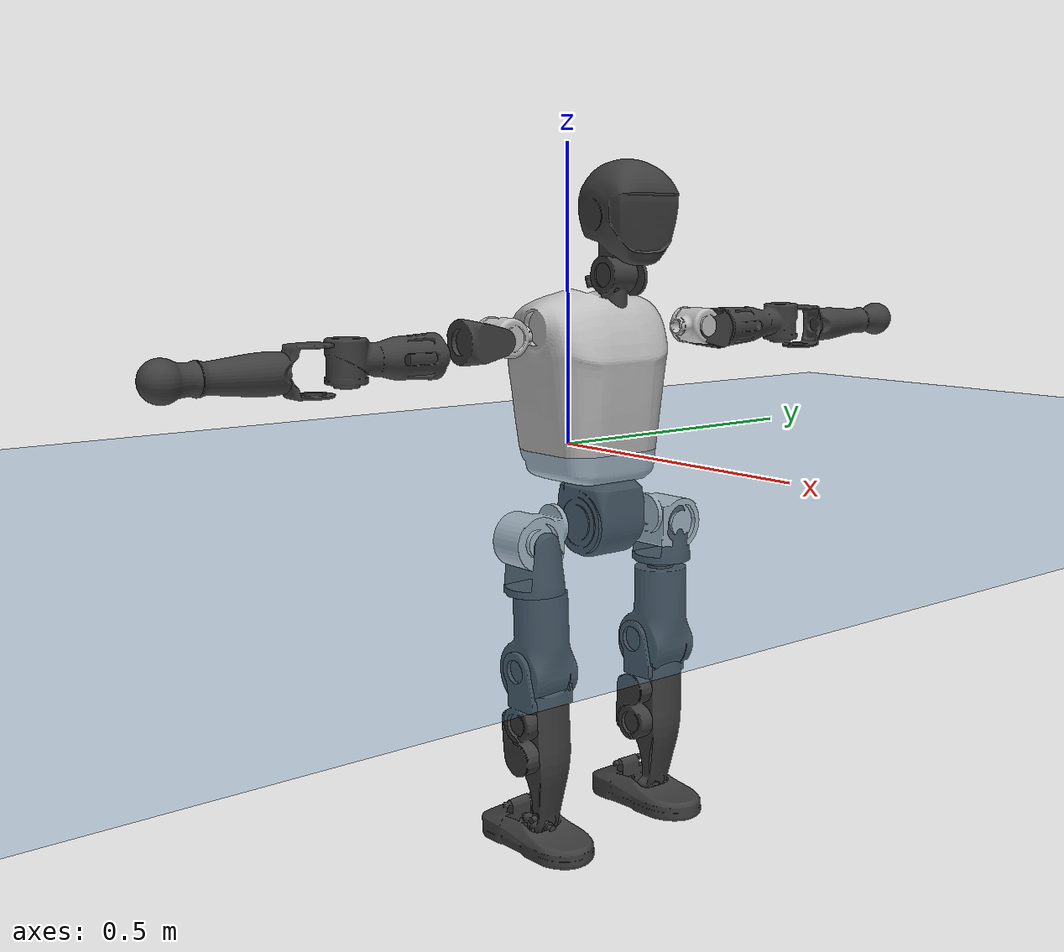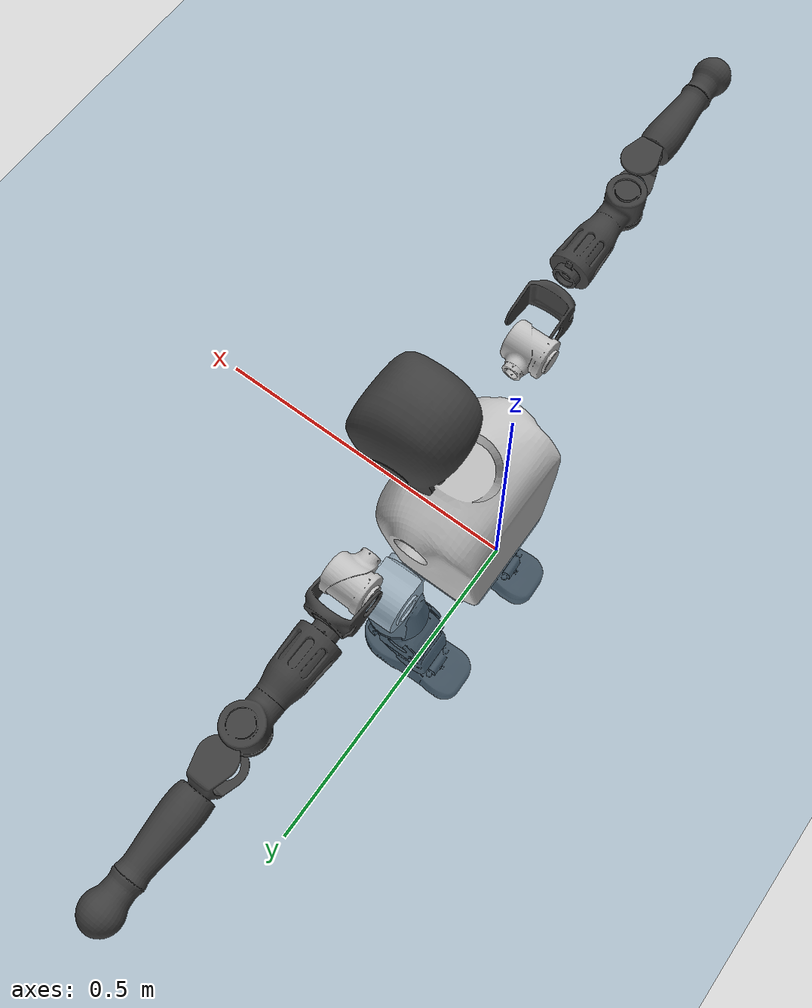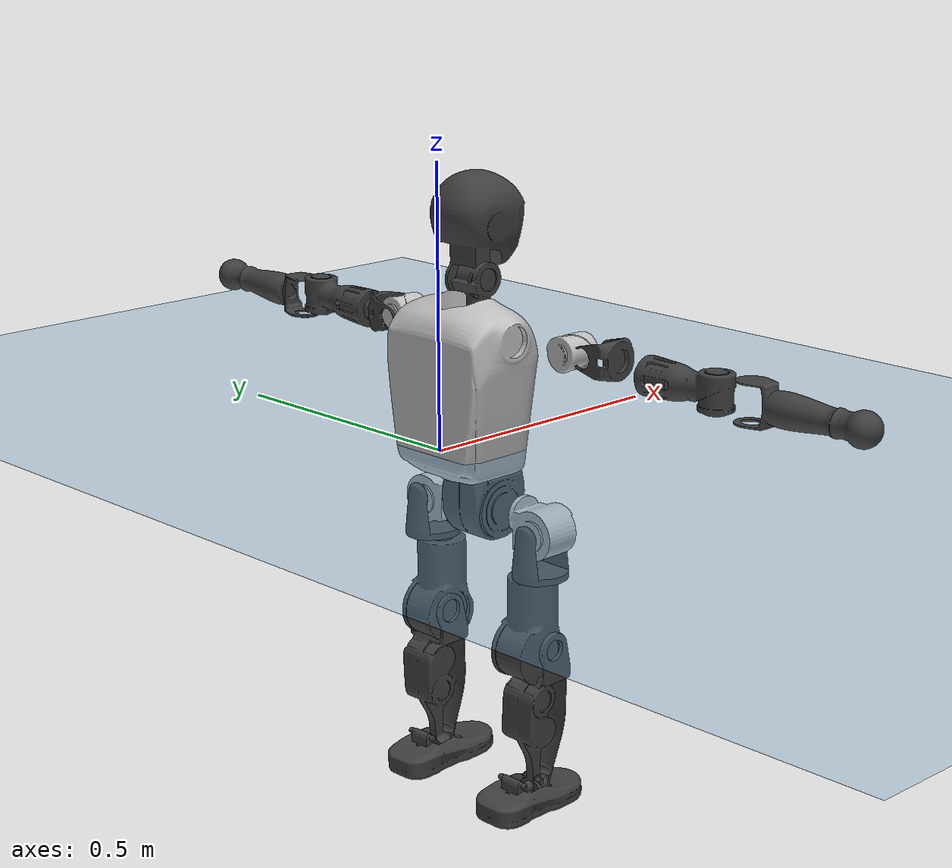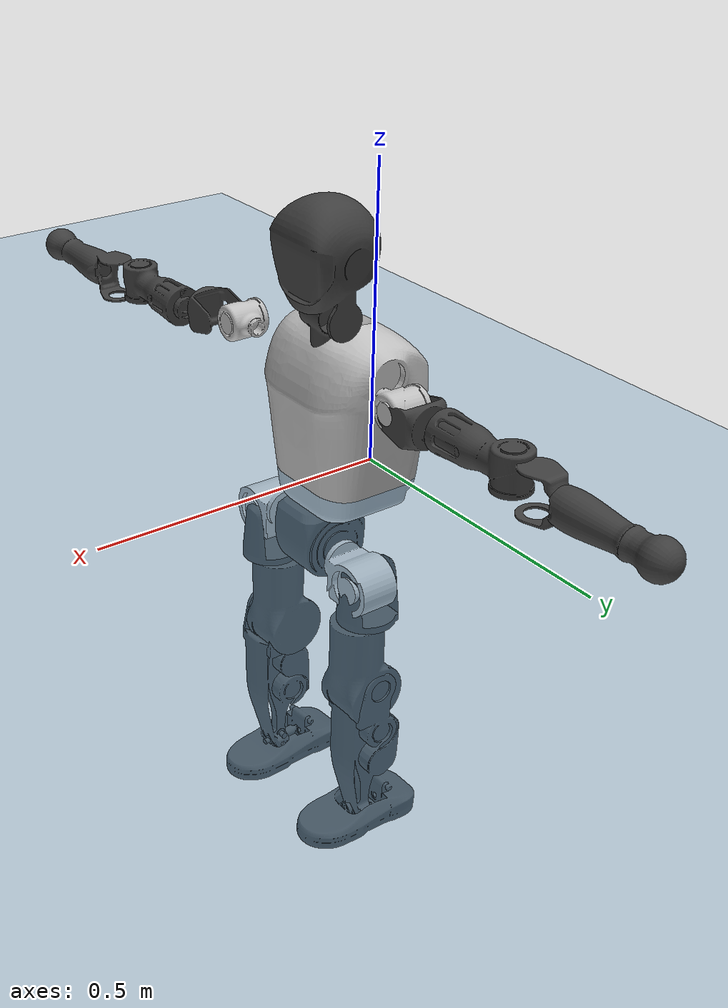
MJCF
<mujoco model="T1">
  <compiler angle="radian" assetdir="assets" balanceinertia="true" inertiafromgeom="false"/>

  <option timestep="0.005" density="1.2" viscosity="2e-05"/>

  <size nkey="1"/>

  <visual>
    <quality shadowsize="8192"/>
    <map shadowclip="0.5"/>
  </visual>

  <default>
    <default class="/">
      <joint armature="0.01" damping="0.01" frictionloss="0.1"/>
      <geom contype="0" conaffinity="0" group="1" solref="-1000 -80"/>
      <site size="0.01 0.005 0.005" group="5"/>
      <general forcelimited="true" biastype="affine" gainprm="25" biasprm="0 -25 -0.6"/>
      <default class="t1">
        <geom rgba="0.25 0.25 0.25 1"/>
        <default class="visual">
          <geom type="mesh" group="2"/>
        </default>
        <default class="collision">
          <geom group="3"/>
        </default>
        <default class="foot">
          <geom size="0.1115 0.05 0.015" type="box" condim="6" group="4" priority="1" solimp="0.015 1 0.015"/>
        </default>
        <default class="reward_collision_sphere">
          <geom group="5" rgba="1 0 0 1"/>
        </default>
      </default>
    </default>
  </default>

  <asset>
    <texture type="skybox" colorspace="auto" name="//unnamed_texture_0" builtin="gradient" rgb1="0.95 0.95 0.95" rgb2="0.95 0.95 0.95" width="100" height="600"/>
    <texture type="2d" colorspace="auto" name="texplane" builtin="checker" rgb1="0.345 0.575 0.748" rgb2="0.345 0.575 0.748" markrgb="1 1 1" width="512" height="512"/>
    <material name="MatPlane" class="/" texture="texplane" texuniform="true" texrepeat="2 2" specular="0.9"/>
    <mesh name="Trunk" class="/" file="Trunk.stl"/>
    <mesh name="H1" class="/" file="H1.stl"/>
    <mesh name="H2" class="/" file="H2.stl"/>
    <mesh name="AL1" class="/" file="AL1.stl"/>
    <mesh name="AL2" class="/" file="AL2.stl"/>
    <mesh name="AL3" class="/" file="AL3.stl"/>
    <mesh name="left_hand_link" class="/" file="left_hand_link.stl"/>
    <mesh name="AR1" class="/" file="AR1.stl"/>
    <mesh name="AR2" class="/" file="AR2.stl"/>
    <mesh name="AR3" class="/" file="AR3.stl"/>
    <mesh name="right_hand_link" class="/" file="right_hand_link.stl"/>
    <mesh name="Waist" class="/" file="Waist.stl"/>
    <mesh name="Hip_Pitch_Left" class="/" file="Hip_Pitch_Left.stl"/>
    <mesh name="Hip_Roll_Left" class="/" file="Hip_Roll_Left.stl"/>
    <mesh name="Hip_Yaw_Left" class="/" file="Hip_Yaw_Left.stl"/>
    <mesh name="Shank_Left" class="/" file="Shank_Left.stl"/>
    <mesh name="Ankle_Cross_Left" class="/" file="Ankle_Cross_Left.stl"/>
    <mesh name="left_foot_link" class="/" file="left_foot_link.stl"/>
    <mesh name="Hip_Pitch_Right" class="/" file="Hip_Pitch_Right.stl"/>
    <mesh name="Hip_Roll_Right" class="/" file="Hip_Roll_Right.stl"/>
    <mesh name="Hip_Yaw_Right" class="/" file="Hip_Yaw_Right.stl"/>
    <mesh name="Shank_Right" class="/" file="Shank_Right.stl"/>
    <mesh name="Ankle_Cross_Right" class="/" file="Ankle_Cross_Right.stl"/>
    <mesh name="right_foot_link" class="/" file="right_foot_link.stl"/>
  </asset>

  <worldbody>
    <geom name="floor" class="/" size="100 100 0.125" type="plane" group="0" material="MatPlane"/>
    <light name="toplight_shadow" class="/" pos="0 0 5" dir="0.0990148 0.0990148 -0.990148" type="directional" ambient="0.04 0.04 0.04" diffuse="0.55 0.55 0.55" specular="0.12 0.12 0.12"/>
    <light name="toplight_fill" class="/" pos="0 0 5" dir="0.0990148 0.0990148 -0.990148" type="directional" castshadow="false" ambient="0.04 0.04 0.04" diffuse="0.3 0.3 0.3" specular="0.08 0.08 0.08"/>
    <body name="trunk" childclass="t1" pos="0.00402892 -0.000719358 -0.0148232" quat="0.999997 0.00119229 0.00112937 0.00207139">
      <inertial pos="0.0767974 0.0027601 0.111934" quat="0.998647 0.050705 0.0115004 0.000291404" mass="27.2718" diaginertia="0.611995 0.42566 0.056487"/>
      <joint name="//unnamed_joint_0" type="free" armature="0" damping="0" frictionloss="0"/>
      <geom name="//unnamed_geom_1" class="visual" rgba="0.76 0.76 0.76 1" mesh="Trunk"/>
      <geom name="//unnamed_geom_2" class="collision" size="0.0971308 0.129508 0.194262" pos="0.0868803 0 0.118143" type="box"/>
      <geom name="//unnamed_geom_3" class="reward_collision_sphere" size="0.148934" pos="0.0868803 0 0.0984521"/>
      <geom name="//unnamed_geom_4" class="reward_collision_sphere" size="0.0194262" pos="0.0868803 0.12348 0"/>
      <geom name="//unnamed_geom_5" class="reward_collision_sphere" size="0.0194262" pos="0.0868803 -0.12348 0"/>
      <geom name="//unnamed_geom_6" class="reward_collision_sphere" size="0.0194262" pos="0.0868803 0.155439 0.177214"/>
      <geom name="//unnamed_geom_7" class="reward_collision_sphere" size="0.0194262" pos="0.0868803 -0.155439 0.177214"/>
      <site name="imu" pos="-0.0918841 0.0813087 -0.0496911" size="0.0129508"/>
      <camera name="track" pos="0 -2.90541 0" quat="0.707107 0.707107 0 0" mode="trackcom"/>
      <camera name="ego_camera" pos="0.176657 0 0.413499" quat="-0.5 -0.5 0.5 0.5"/>
      <body name="H1" pos="0.0998924 0.0119178 0.239558" quat="0.999983 -0.00312614 -0.00488449 -0.000741443">
        <inertial pos="-0.00168129 0.00459289 0.0634356" quat="0.737637 -0.00416699 -0.00593597 0.675159" mass="0.893376" diaginertia="0.00116804 0.00137646 0.000111197"/>
        <joint name="AAHead_yaw" pos="0 0 0" axis="-0.00489293 -0.00814189 0.999955" range="-1.76797 1.32182" armature="0.00758812" damping="0.000145821" frictionloss="0.181138"/>
        <geom name="//unnamed_geom_8" class="visual" mesh="H1"/>
        <body name="H2" pos="-0.00347959 0.0168997 0.056865" quat="0.999999 0.00110971 7.35036e-05 -0.00106059">
          <inertial pos="-0.00747416 -0.0156041 0.0840658" quat="0.992096 0.076855 -0.08728 -0.047133" mass="1.00935" diaginertia="0.0109121 0.0131674 0.00163505"/>
          <joint name="Head_pitch" pos="0 0 0" axis="0.0346474 -0.999252 -0.0171479" range="-1.22479 0.0888741" armature="0.0238145" damping="0.0707636" frictionloss="0.124994"/>
          <geom name="//unnamed_geom_9" class="visual" mesh="H2"/>
          <geom name="//unnamed_geom_10" class="collision" size="0.103606" pos="0.01448 0 0.108297"/>
          <geom name="//unnamed_geom_11" class="reward_collision_sphere" size="0.116557" pos="0.0289601 0 0.0984521"/>
        </body>
      </body>
      <body name="AL1" pos="0.097445 0.152166 0.211551" quat="0.999987 -0.0019506 -0.000375758 -0.00473777">
        <inertial pos="-0.0114349 0.0544626 -0.0170414" quat="0.498672 0.487831 -0.547965 0.461607" mass="1.21449" diaginertia="0.0090822 0.00804375 0.000228617"/>
        <joint name="Left_Shoulder_Pitch" pos="0 0 0" axis="-0.00456315 0.999122 0.0416561" stiffness="0.0788916" range="-2.97832 1.481" armature="0.00845755" damping="0.0166656" frictionloss="0.138676"/>
        <geom name="//unnamed_geom_12" class="visual" rgba="0.76 0.76 0.76 1" mesh="AL1"/>
        <body name="AL2" pos="-0.0045429 0.0516771 -0.00790726" quat="0.999957 0.00506193 0.00304092 -0.00709395">
          <inertial pos="-0.00471936 0.0582058 0.014443" quat="0.489532 0.513474 -0.507644 0.488876" mass="0.208226" diaginertia="0.00212038 0.00143168 0.00013899"/>
          <joint name="Left_Shoulder_Roll" pos="0 0 0" axis="-0.995636 -0.0280415 -0.0890067" stiffness="0.057126" range="-1.32214 1.6893" armature="0.00581625" damping="0.0968347" frictionloss="0.189594"/>
          <geom name="//unnamed_geom_13" class="visual" mesh="AL2"/>
          <body name="AL3" pos="-0.0094588 0.0713825 0.000662753" quat="0.999955 0.00864695 0.00302602 -0.00246363">
            <inertial pos="-0.00501985 0.119649 -0.00242781" quat="0.7561 0.654085 -0.0219299 0.00228736" mass="1.72453" diaginertia="0.0680197 0.0619451 0.000513761"/>
            <joint name="Left_Elbow_Pitch" pos="0 0 0" axis="-0.0036138 -0.9999 0.0136635" range="-2.06054 2.20339" armature="0.0108572" damping="0" frictionloss="0.110781"/>
            <geom name="//unnamed_geom_14" class="visual" mesh="AL3"/>
            <geom name="//unnamed_geom_15" class="collision" size="0.0388523 0.0971308" pos="0 0.0726353 0" quat="0.707105 0.707108 0 0" type="cylinder"/>
            <geom name="//unnamed_geom_16" class="reward_collision_sphere" size="0.0466228"/>
            <body name="left_hand_link" pos="-0.00131196 0.195697 -0.0127632" quat="0.999963 0.000518359 0.00742843 0.00431272">
              <inertial pos="0.00605729 0.169588 0.0172202" quat="0.761995 0.647331 0.00539369 -0.0172442" mass="0.862412" diaginertia="0.0552256 0.0623272 0.00027954"/>
              <joint name="Left_Elbow_Yaw" pos="0 0 0" axis="0.0595358 0.0506558 0.99694" range="-2.45371 -0.295071" armature="0.0117934" damping="0.0727806" frictionloss="0.0105762"/>
              <geom name="//unnamed_geom_17" class="visual" mesh="left_hand_link"/>
              <geom name="//unnamed_geom_18" class="collision" size="0.0388523 0.113319" pos="0 0.188852 0" quat="0.707105 0.707108 0 0" type="cylinder"/>
              <geom name="//unnamed_geom_19" class="reward_collision_sphere" size="0.0647539"/>
              <geom name="//unnamed_geom_20" class="reward_collision_sphere" size="0.0453277" pos="0 0.159798 0"/>
              <geom name="//unnamed_geom_21" class="reward_collision_sphere" size="0.0453277" pos="0 0.312332 0"/>
            </body>
          </body>
        </body>
      </body>
      <body name="AR1" pos="0.0990086 -0.168078 0.211543" quat="0.999994 -0.00101935 0.0024261 -0.00210798">
        <inertial pos="-0.0049523 -0.058063 -0.00533465" quat="0.508335 0.479635 -0.518316 0.492844" mass="1.05816" diaginertia="0.00881871 0.0097379 0.000300592"/>
        <joint name="Right_Shoulder_Pitch" pos="0 0 0" axis="0.0499399 -0.998398 -0.0265973" range="-1.57006 3.42633" armature="0.0152892" damping="0" frictionloss="0.138972"/>
        <geom name="//unnamed_geom_22" class="visual" rgba="0.76 0.76 0.76 1" mesh="AR1"/>
        <body name="AR2" pos="0.0170311 -0.0827429 -0.00260687" quat="0.999985 -0.00400113 0.00386532 -6.86366e-05">
          <inertial pos="0.0175523 -0.064942 0.0138406" quat="0.503726 0.498581 -0.468637 0.52731" mass="0.282811" diaginertia="0.00271284 0.00242454 0.000158"/>
          <joint name="Right_Shoulder_Roll" pos="0 0 0" axis="-0.999598 0.0216922 0.0182603" range="-1.9654 1.91514" armature="0.0109358" damping="0" frictionloss="0.238047"/>
          <geom name="//unnamed_geom_23" class="visual" mesh="AR2"/>
          <body name="AR3" pos="0.0114066 -0.106125 -0.016287" quat="0.999997 0.000809715 -0.00106663 -0.00227121">
            <inertial pos="-0.000795759 -0.115979 0.00030226" quat="0.721322 0.686481 -0.0798214 0.0454619" mass="2.4765" diaginertia="0.0916739 0.0680725 0.000615735"/>
            <joint name="Right_Elbow_Pitch" pos="0 0 0" axis="6.83765e-05 0.999996 0.00296241" range="-2.238 2.31118" armature="0.0169822" damping="0" frictionloss="0.0162998"/>
            <geom name="//unnamed_geom_24" class="visual" mesh="AR3"/>
            <geom name="//unnamed_geom_25" class="collision" size="0.0388523 0.0971308" pos="0 -0.0726353 0" quat="0.707105 0.707108 0 0" type="cylinder"/>
            <geom name="//unnamed_geom_26" class="reward_collision_sphere" size="0.0466228"/>
            <body name="right_hand_link" pos="0.0161971 -0.207324 -0.00855849" quat="0.999984 0.0030293 0.00384313 0.0029141">
              <inertial pos="-0.00651154 -0.158405 -0.0164001" quat="0.665381 0.743892 0.00974328 -0.0616241" mass="0.801385" diaginertia="0.0738632 0.0620445 0.000246928"/>
              <joint name="Right_Elbow_Yaw" pos="0 0 0" axis="0.0156397 0.020592 0.999666" stiffness="0.0124165" range="0.295601 2.29803" armature="0.000295006" damping="0.00952025" frictionloss="0.126339"/>
              <geom name="//unnamed_geom_27" class="visual" mesh="right_hand_link"/>
              <geom name="//unnamed_geom_28" class="collision" size="0.0388523 0.113319" pos="0 -0.188852 0" quat="0.707105 0.707108 0 0" type="cylinder"/>
              <geom name="//unnamed_geom_29" class="reward_collision_sphere" size="0.0647539"/>
              <geom name="//unnamed_geom_30" class="reward_collision_sphere" size="0.0453277" pos="0 -0.159798 0"/>
              <geom name="//unnamed_geom_31" class="reward_collision_sphere" size="0.0453277" pos="0 -0.312332 0"/>
            </body>
          </body>
        </body>
      </body>
      <body name="Waist" pos="0.0907099 -0.00904209 -0.0990146" quat="0.999998 5.75404e-05 0.000940427 0.00180005">
        <inertial pos="-0.0139731 0.000202898 0.00727496" quat="0.985356 -0.000610233 -0.163967 -0.046772" mass="5.56697" diaginertia="0.0406254 0.0494876 0.00479373"/>
        <joint name="Waist" pos="0 0 0" axis="-0.0072309 0.0421001 0.999087" stiffness="0.0171138" range="-1.94138 1.36578" armature="0.0224247" damping="0" frictionloss="0.163038"/>
        <geom name="//unnamed_geom_32" class="visual" mesh="Waist"/>
        <body name="Hip_Pitch_Left" pos="0.0169923 0.137828 -3.6627e-05" quat="0.999961 -0.00343589 -0.00420746 0.00692372">
          <inertial pos="0.0130987 -0.028794 -0.0165277" quat="0.974211 0.225527 0.00579271 -0.0040778" mass="2.79485" diaginertia="0.0128418 0.00835288 0.00130742"/>
          <joint name="Left_Hip_Pitch" pos="0 0 0" axis="-0.0209845 0.999414 -0.0270426" range="-1.81375 1.31152" armature="0.0126241" damping="0" frictionloss="0.133137"/>
          <geom name="//unnamed_geom_33" class="visual" rgba="0.76 0.76 0.76 1" mesh="Hip_Pitch_Left"/>
          <body name="Hip_Roll_Left" pos="-0.0116385 -0.00282472 -0.0110426" quat="0.999967 0.0026527 -0.00273882 -0.00714114">
            <inertial pos="0.00221973 0.00295476 -0.0447349" quat="0.698987 -0.015732 -0.0025036 0.714957" mass="0.791131" diaginertia="0.0112034 0.0113402 0.000547413"/>
            <joint name="Left_Hip_Roll" pos="0 0 0" axis="-0.999967 -0.000825577 -0.00802121" stiffness="0.061674" range="-1.72542 0.370125" armature="0.0122294" damping="0" frictionloss="0.0332817"/>
            <geom name="//unnamed_geom_34" class="visual" mesh="Hip_Roll_Left"/>
            <geom name="//unnamed_geom_35" class="reward_collision_sphere" size="0.0712292"/>
            <body name="Hip_Yaw_Left" pos="0.00753312 -0.0114074 -0.0862959" quat="0.99998 -6.96918e-05 0.00336119 0.00538139">
              <inertial pos="-0.0104838 0.00182079 -0.0871322" quat="0.689656 -0.0761773 -0.111942 0.711366" mass="5.39747" diaginertia="0.153086 0.203485 0.0020717"/>
              <joint name="Left_Hip_Yaw" pos="0 0 0" axis="-0.0375818 0.0720099 -0.996696" stiffness="0.0024952" range="-1.07845 0.893233" armature="0.0119375" damping="0.048346" frictionloss="0.126602"/>
              <geom name="//unnamed_geom_36" class="visual" mesh="Hip_Yaw_Left"/>
              <geom name="//unnamed_geom_37" class="collision" size="0.0647539 0.103606" type="cylinder"/>
              <body name="Shank_Left" pos="-0.0222614 -0.0035486 -0.12564" quat="0.999983 -0.000153915 -0.00508031 -0.00292233">
                <inertial pos="-0.00509712 -0.00869867 -0.121289" quat="0.991732 -0.0182343 -0.0896116 0.0900242" mass="3.55871" diaginertia="0.273046 0.202205 0.00178473"/>
                <joint name="Left_Knee_Pitch" pos="0 0 0" axis="-0.0116893 0.999921 0.00469452" stiffness="0.0148766" range="-0.193131 2.34525" armature="0.00707359" damping="0.0329927" frictionloss="0.0271449"/>
                <geom name="//unnamed_geom_38" class="visual" mesh="Shank_Left"/>
                <geom name="//unnamed_geom_39" class="collision" size="0.0647539 0.0971308" pos="0 0 -0.118143" type="cylinder"/>
                <geom name="//unnamed_geom_40" class="reward_collision_sphere" size="0.08418"/>
                <body name="Ankle_Cross_Left" pos="0.0105341 -0.0055828 -0.277017" quat="0.99998 -0.00154538 -0.0053425 0.00289294">
                  <inertial pos="0.000506005 -0.0113555 0.0107572" quat="0.45209 0.572402 0.552912 0.402814" mass="0.11597" diaginertia="0.000116988 0.000153546 9.58107e-06"/>
                  <joint name="Left_Ankle_Pitch" pos="0 0 0" axis="-0.00248466 0.998288 -0.0584363" stiffness="0.0274899" range="-0.493672 0.105258" armature="0.0202368" damping="0" frictionloss="0.0246738"/>
                  <geom name="//unnamed_geom_41" class="visual" mesh="Ankle_Cross_Left"/>
                  <body name="left_foot_link" pos="-0.0163078 -0.00396454 0.00506407" quat="0.999989 -0.00362785 -0.00258341 -0.0012245">
                    <inertial pos="0.00849783 0.0172133 -0.0162407" quat="-0.010066 0.622162 -0.0139496 0.7827" mass="1.7183" diaginertia="0.0145142 0.0156829 0.00183127"/>
                    <joint name="Left_Ankle_Roll" pos="0 0 0" axis="-0.999022 -0.0241928 0.0370045" range="-0.185159 0.639887" armature="0.0126732" damping="0.0585013" frictionloss="0.0940529"/>
                    <geom name="//unnamed_geom_42" class="visual" mesh="left_foot_link"/>
                    <geom name="left_foot" class="foot" size="0.0988136 0.0705222 0.0115513" pos="0.01448 0 -0.0147678"/>
                    <geom name="//unnamed_geom_44" class="reward_collision_sphere" size="0.067344" pos="0.01448 0 -0.0147678"/>
                    <geom name="//unnamed_geom_45" class="reward_collision_sphere" size="0.0388523" pos="0.13756 -0.0334122 -0.0147678"/>
                    <geom name="//unnamed_geom_46" class="reward_collision_sphere" size="0.0388523" pos="-0.10136 -0.0334122 -0.0147678"/>
                    <site name="left_foot" class="foot" pos="0.01448 0 -0.0147678" size="0.0129508"/>
                  </body>
                </body>
              </body>
            </body>
          </body>
        </body>
        <body name="Hip_Pitch_Right" pos="-0.000912872 -0.152699 0.00324467" quat="0.999982 -0.00226642 -0.00516851 -0.00206194">
          <inertial pos="-0.000487057 0.00237316 -0.0349345" quat="0.963609 -0.251967 0.0890746 0.0060597" mass="1.97418" diaginertia="0.0104104 0.00862302 0.000846573"/>
          <joint name="Right_Hip_Pitch" pos="0 0 0" axis="0.0376525 -0.99719 0.064768" stiffness="0.0557365" range="-1.50919 1.81436" armature="0.00371294" damping="0.0431638" frictionloss="0.0524146"/>
          <geom name="//unnamed_geom_47" class="visual" rgba="0.76 0.76 0.76 1" mesh="Hip_Pitch_Right"/>
          <body name="Hip_Roll_Right" pos="0.00168717 0.0111783 -0.0283074" quat="0.999956 0.00579413 -0.00642701 0.00360992">
            <inertial pos="-0.0167416 -0.00909523 -0.0394655" quat="0.685576 0.0322962 0.0515193 0.725457" mass="0.975401" diaginertia="0.0152797 0.0104229 0.000552701"/>
            <joint name="Right_Hip_Roll" pos="0 0 0" axis="-0.999921 0.012333 0.00247055" range="-0.203986 1.27224" armature="0.0101956" damping="0.00265885" frictionloss="0.124163"/>
            <geom name="//unnamed_geom_48" class="visual" mesh="Hip_Roll_Right"/>
            <geom name="//unnamed_geom_49" class="reward_collision_sphere" size="0.0712292"/>
            <body name="Hip_Yaw_Right" pos="-0.00633675 0.0144729 -0.0795898" quat="0.999965 0.00502865 -0.000435783 0.00664216">
              <inertial pos="-0.0228648 0.00636846 -0.0968637" quat="0.699632 0.00169989 -0.0873192 0.709145" mass="3.2982" diaginertia="0.103094 0.0994702 0.00163971"/>
              <joint name="Right_Hip_Yaw" pos="0 0 0" axis="-0.0195382 -0.0418728 -0.998932" stiffness="0.0046069" range="-0.964845 1.37123" armature="0.0122637" damping="0.0160196" frictionloss="0.238179"/>
              <geom name="//unnamed_geom_50" class="visual" mesh="Hip_Yaw_Right"/>
              <geom name="//unnamed_geom_51" class="collision" size="0.0647539 0.103606" type="cylinder"/>
              <body name="Shank_Right" pos="-0.00287856 -0.0134423 -0.121599" quat="0.999966 0.00672785 0.00457575 -0.00154637">
                <inertial pos="-0.0246897 -0.0120865 -0.114587" quat="0.999722 0.0029518 -0.0160621 -0.0169939" mass="3.22368" diaginertia="0.225079 0.292701 0.00231573"/>
                <joint name="Right_Knee_Pitch" pos="0 0 0" axis="-0.0202284 -0.999394 0.0283143" range="-2.17669 -0.00674037" armature="0.00968766" damping="0" frictionloss="0.0621774"/>
                <geom name="//unnamed_geom_52" class="visual" mesh="Shank_Right"/>
                <geom name="//unnamed_geom_53" class="collision" size="0.0647539 0.0971308" pos="0 0 -0.118143" type="cylinder"/>
                <geom name="//unnamed_geom_54" class="reward_collision_sphere" size="0.08418"/>
                <body name="Ankle_Cross_Right" pos="-0.00207933 -4.60021e-05 -0.261423" quat="0.999967 -6.2114e-05 0.00684105 0.00439749">
                  <inertial pos="-0.00632322 0.000961249 -0.0087309" quat="0.483026 0.556741 0.523165 0.427813" mass="0.223875" diaginertia="0.000217055 0.00019268 1.31734e-05"/>
                  <joint name="Right_Ankle_Pitch" pos="0 0 0" axis="-0.0491137 -0.995555 0.0803651" range="-0.375752 1.14583" armature="0.00333121" damping="0.0749541" frictionloss="0.249635"/>
                  <geom name="//unnamed_geom_55" class="visual" mesh="Ankle_Cross_Right"/>
                  <body name="right_foot_link" pos="-0.0137742 -0.000785276 -0.0208312" quat="0.999983 0.00122866 0.00191793 0.00538328">
                    <inertial pos="-0.00838519 0.000533905 0.00689933" quat="0.00226808 0.638007 -0.0205696 0.769753" mass="1.04998" diaginertia="0.0175581 0.0125886 0.00201059"/>
                    <joint name="Right_Ankle_Roll" pos="0 0 0" axis="-0.997225 0.061376 0.0421383" range="-0.814983 0.219962" armature="0.0229534" damping="0" frictionloss="0.0969552"/>
                    <geom name="//unnamed_geom_56" class="visual" mesh="right_foot_link"/>
                    <geom name="right_foot" class="foot" size="0.241857 0.0493351 0.0207683" pos="0.01448 0 -0.0147678"/>
                    <geom name="//unnamed_geom_58" class="reward_collision_sphere" size="0.0518031"/>
                    <geom name="//unnamed_geom_59" class="reward_collision_sphere" size="0.0388523" pos="0.01448 0 -0.0147678"/>
                    <geom name="//unnamed_geom_60" class="reward_collision_sphere" size="0.0388523" pos="0.13756 0.0334122 -0.0147678"/>
                    <geom name="//unnamed_geom_61" class="reward_collision_sphere" size="0.0388523" pos="-0.10136 0.0334122 -0.0147678"/>
                    <site name="right_foot" class="foot" pos="0.01448 0 -0.0147678" size="0.0129508"/>
                  </body>
                </body>
              </body>
            </body>
          </body>
        </body>
      </body>
    </body>
  </worldbody>

  <contact>
    <pair class="/" geom1="floor" geom2="left_foot" name="//unnamed_contact_0"/>
    <pair class="/" geom1="floor" geom2="right_foot" name="//unnamed_contact_1"/>
  </contact>

  <actuator>
    <general name="AAHead_yaw" class="/" joint="AAHead_yaw" forcerange="-12.789 12.789" gainprm="20.5495" biasprm="0 -20.5495 -0.595138"/>
    <general name="Head_pitch" class="/" joint="Head_pitch" forcerange="-7.12863 7.12863" gainprm="20.5495" biasprm="0 -20.5495 -0.595138"/>
    <general name="Left_Shoulder_Pitch" class="/" joint="Left_Shoulder_Pitch" forcerange="-25.3433 25.3433" gainprm="20.5495" biasprm="0 -20.5495 -0.595138"/>
    <general name="Left_Shoulder_Roll" class="/" joint="Left_Shoulder_Roll" forcerange="-25.409 25.409" gainprm="20.5495" biasprm="0 -20.5495 -0.595138"/>
    <general name="Left_Elbow_Pitch" class="/" joint="Left_Elbow_Pitch" forcerange="-9.79571 9.79571" gainprm="20.5495" biasprm="0 -20.5495 -0.595138"/>
    <general name="Left_Elbow_Yaw" class="/" joint="Left_Elbow_Yaw" forcerange="-29.175 29.175" gainprm="20.5495" biasprm="0 -20.5495 -0.595138"/>
    <general name="Right_Shoulder_Pitch" class="/" joint="Right_Shoulder_Pitch" forcerange="-23.1755 23.1755" gainprm="20.5495" biasprm="0 -20.5495 -0.595138"/>
    <general name="Right_Shoulder_Roll" class="/" joint="Right_Shoulder_Roll" forcerange="-23.2045 23.2045" gainprm="20.5495" biasprm="0 -20.5495 -0.595138"/>
    <general name="Right_Elbow_Pitch" class="/" joint="Right_Elbow_Pitch" forcerange="-30.7339 30.7339" gainprm="20.5495" biasprm="0 -20.5495 -0.595138"/>
    <general name="Right_Elbow_Yaw" class="/" joint="Right_Elbow_Yaw" forcerange="-9.40885 9.40885" gainprm="20.5495" biasprm="0 -20.5495 -0.595138"/>
    <general name="Waist" class="/" joint="Waist" forcerange="-23.5593 23.5593" gainprm="20.5495" biasprm="0 -20.5495 -0.595138"/>
    <general name="Left_Hip_Pitch" class="/" joint="Left_Hip_Pitch" forcerange="-98.7334 98.7334" gainprm="20.5495" biasprm="0 -20.5495 -0.595138"/>
    <general name="Left_Hip_Roll" class="/" joint="Left_Hip_Roll" forcerange="-28.6389 28.6389" gainprm="20.5495" biasprm="0 -20.5495 -0.595138"/>
    <general name="Left_Hip_Yaw" class="/" joint="Left_Hip_Yaw" forcerange="-26.0465 26.0465" gainprm="20.5495" biasprm="0 -20.5495 -0.595138"/>
    <general name="Left_Knee_Pitch" class="/" joint="Left_Knee_Pitch" forcerange="-30.7109 30.7109" gainprm="20.5495" biasprm="0 -20.5495 -0.595138"/>
    <general name="Left_Ankle_Pitch" class="/" joint="Left_Ankle_Pitch" forcerange="-19.5859 19.5859" gainprm="20.5495" biasprm="0 -20.5495 -0.595138"/>
    <general name="Left_Ankle_Roll" class="/" joint="Left_Ankle_Roll" forcerange="-20.4607 20.4607" gainprm="20.5495" biasprm="0 -20.5495 -0.595138"/>
    <general name="Right_Hip_Pitch" class="/" joint="Right_Hip_Pitch" forcerange="-20.1741 20.1741" gainprm="20.5495" biasprm="0 -20.5495 -0.595138"/>
    <general name="Right_Hip_Roll" class="/" joint="Right_Hip_Roll" forcerange="-28.0141 28.0141" gainprm="20.5495" biasprm="0 -20.5495 -0.595138"/>
    <general name="Right_Hip_Yaw" class="/" joint="Right_Hip_Yaw" forcerange="-26.1106 26.1106" gainprm="20.5495" biasprm="0 -20.5495 -0.595138"/>
    <general name="Right_Knee_Pitch" class="/" joint="Right_Knee_Pitch" forcerange="-40.2883 40.2883" gainprm="20.5495" biasprm="0 -20.5495 -0.595138"/>
    <general name="Right_Ankle_Pitch" class="/" joint="Right_Ankle_Pitch" forcerange="-36.2711 36.2711" gainprm="20.5495" biasprm="0 -20.5495 -0.595138"/>
    <general name="Right_Ankle_Roll" class="/" joint="Right_Ankle_Roll" forcerange="-32.1674 32.1674" gainprm="20.5495" biasprm="0 -20.5495 -0.595138"/>
  </actuator>

  <sensor>
    <gyro site="imu" name="imu_angular_velocity"/>
    <velocimeter site="imu" name="imu_linear_velocity"/>
    <framelinvel objtype="site" objname="left_foot" name="left_foot_global_linear_velocity"/>
    <framelinvel objtype="site" objname="right_foot" name="right_foot_global_linear_velocity"/>
  </sensor>

  <keyframe>
    <key name="home" qpos="0 0 0.6385 1 0 0 0 0 0 0 1.4 0 -0.4 0 -1.4 0 0.4 0 -0.4 0 0 0.8 -0.4 0 0.4 0 0 -0.8 0.4 0"/>
  </keyframe>
</mujoco>
